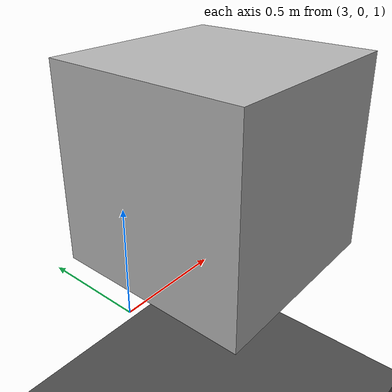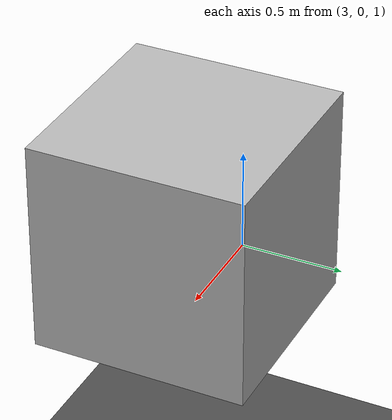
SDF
<sdf version="1.6">
 <world name="default">
  <include><uri>model://sun</uri></include>
  <plugin name="ros_interface_plugin" filename="librotors_gazebo_ros_interface_plugin.so"/>
  <model name="ground_plane">
   <static>1</static>
   <link name="link">
    <collision name="collision">
     <geometry><plane><normal>0 0 1</normal><size>100 100</size></plane></geometry>
     <surface><friction><ode><mu>100</mu><mu2>50</mu2></ode></friction></surface>
    </collision>
    <visual name="visual">
     <cast_shadows>0</cast_shadows>
     <geometry><plane><normal>0 0 1</normal><size>100 100</size></plane></geometry>
     <material>
      <script><uri>file://media/materials/scripts/gazebo.material</uri><name>Gazebo/Grey</name></script>
     </material>
    </visual>
   </link>
  </model>
  <model name="asphalt_plane">
   <static>1</static>
   <link name="link">
    <collision name="collision"><geometry><box><size>20 20 0.1</size></box></geometry></collision>
    <visual name="visual">
     <cast_shadows>0</cast_shadows>
     <geometry><box><size>20 20 0.1</size></box></geometry>
     <material>
      <script>
       <uri>model://asphalt_plane/materials/scripts</uri>
       <uri>model://asphalt_plane/materials/textures</uri>
       <name>vrc/asphalt</name>
      </script>
     </material>
    </visual>
   </link>
  </model>
  <physics name="default_physics" default="0" type="ode">
   <ode>
    <solver>
     <type>quick</type>
     <iters>10</iters>
     <sor>1.3</sor>
     <use_dynamic_moi_rescaling>0</use_dynamic_moi_rescaling>
    </solver>
    <constraints>
     <cfm>0</cfm>
     <erp>0.2</erp>
     <contact_max_correcting_vel>100</contact_max_correcting_vel>
     <contact_surface_layer>0.001</contact_surface_layer>
    </constraints>
   </ode>
   <max_step_size>0.002</max_step_size>
   <real_time_factor>1</real_time_factor>
   <real_time_update_rate>500</real_time_update_rate>
  </physics>
  <gravity>0 0 0</gravity>
  <magnetic_field>6e-06 2.3e-05 -4.2e-05</magnetic_field>
  <atmosphere type="adiabatic"/>
  <scene><ambient>0.4 0.4 0.4 1</ambient><background>0.7 0.7 0.7 1</background><shadows>1</shadows></scene>
  <spherical_coordinates>
   <surface_model>EARTH_WGS84</surface_model>
   <latitude_deg>0</latitude_deg>
   <longitude_deg>0</longitude_deg>
   <elevation>0</elevation>
   <heading_deg>0</heading_deg>
  </spherical_coordinates>
  <model name="brick_box_3x1x3">
   <static>1</static>
   <link name="chassis">
    <pose>0 0 1.5 0 -0 0</pose>
    <collision name="collision"><geometry><box><size>1 1 1</size></box></geometry></collision>
    <visual name="visual">
     <geometry><mesh><uri>model://brick_box_3x1x3/meshes/simple_box.dae</uri><scale>1 1 1</scale></mesh></geometry>
     <material>
      <script>
       <uri>model://brick_box_3x1x3/materials/scripts</uri>
       <uri>model://brick_box_3x1x3/materials/textures</uri>
       <name>BrickBox/Diffuse</name>
      </script>
     </material>
    </visual>
   </link>
   <pose>3.5952 0.011842 0 0 -0 0</pose>
  </model>
 </world>
</sdf>
